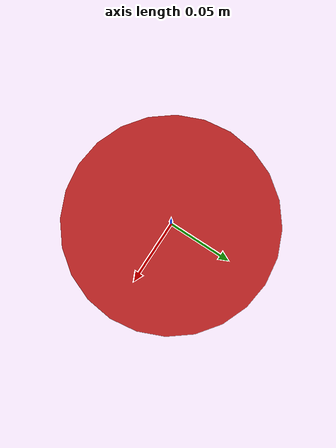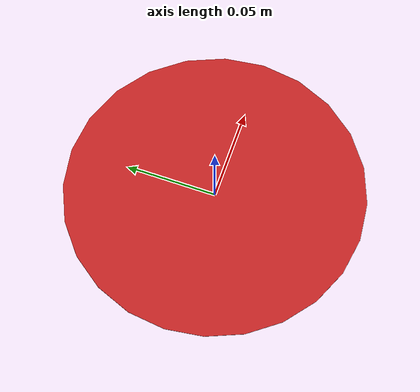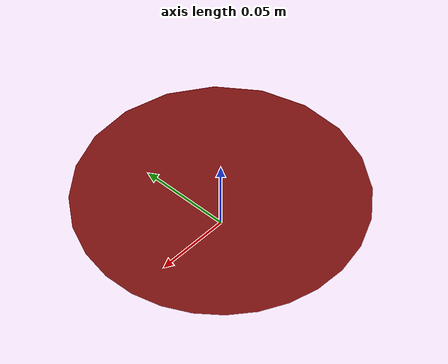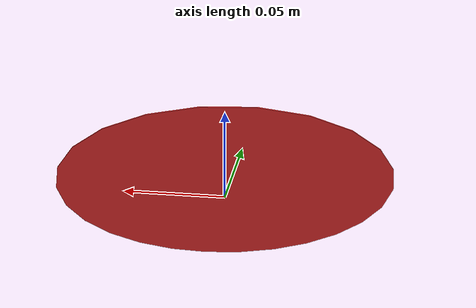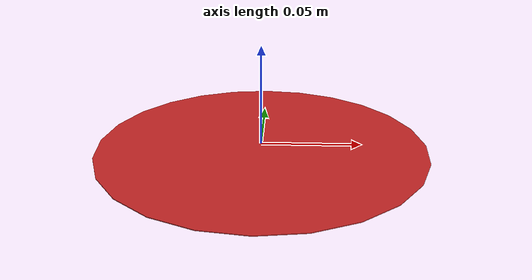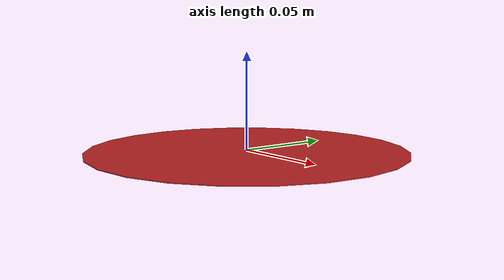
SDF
<?xml version='1.0'?>
<sdf version='1.7'>
  <model name='Token'>
    <link name='link_0'>
      <inertial>
        <mass>8.68216e-06</mass>
        <inertia>
          <ixx>1.46829e-08</ixx>
          <ixy>0</ixy>
          <ixz>0</ixz>
          <iyy>1.46829e-08</iyy>
          <iyz>0</iyz>
          <izz>2.93657e-08</izz>
        </inertia>
        <pose>0 0 0 0 -0 0</pose>
      </inertial>
      <pose>0 0 0 0 -0 0</pose>
      <self_collide>0</self_collide>
      <enable_wind>0</enable_wind>
      <kinematic>0</kinematic>
      <visual name='visual'>
        <pose>0 0 0 0 -0 0</pose>
        <geometry>
          <cylinder>
            <radius>0.0822472</radius>
            <length>0.000356689</length>
          </cylinder>
        </geometry>
        <material>
          <lighting>1</lighting>
          <script>
            <uri>file://media/materials/scripts/gazebo.material</uri>
            <name>Gazebo/Red</name>
          </script>
          <shader type='pixel'/>
        </material>
        <transparency>0</transparency>
        <cast_shadows>1</cast_shadows>
      </visual>
      <collision name='collision'>
        <laser_retro>0</laser_retro>
        <max_contacts>10</max_contacts>
        <pose>0 0 0 0 -0 0</pose>
        <geometry>
          <cylinder>
            <radius>0.082247</radius>
            <length>0.000357</length>
          </cylinder>
        </geometry>
        <surface>
          <friction>
            <ode>
              <mu>1</mu>
              <mu2>1</mu2>
              <fdir1>0 0 0</fdir1>
              <slip1>0</slip1>
              <slip2>0</slip2>
            </ode>
            <torsional>
              <coefficient>1</coefficient>
              <patch_radius>0</patch_radius>
              <surface_radius>0</surface_radius>
              <use_patch_radius>1</use_patch_radius>
              <ode>
                <slip>0</slip>
              </ode>
            </torsional>
          </friction>
          <bounce>
            <restitution_coefficient>0</restitution_coefficient>
            <threshold>1e+06</threshold>
          </bounce>
          <contact>
            <collide_without_contact>0</collide_without_contact>
            <collide_without_contact_bitmask>1</collide_without_contact_bitmask>
            <collide_bitmask>1</collide_bitmask>
            <ode>
              <soft_cfm>0</soft_cfm>
              <soft_erp>0.2</soft_erp>
              <kp>1e+13</kp>
              <kd>1</kd>
              <max_vel>0.01</max_vel>
              <min_depth>0</min_depth>
            </ode>
            <bullet>
              <split_impulse>1</split_impulse>
              <split_impulse_penetration_threshold>-0.01</split_impulse_penetration_threshold>
              <soft_cfm>0</soft_cfm>
              <soft_erp>0.2</soft_erp>
              <kp>1e+13</kp>
              <kd>1</kd>
            </bullet>
          </contact>
        </surface>
      </collision>
    </link>
    <static>0</static>
    <allow_auto_disable>1</allow_auto_disable>
  </model>
</sdf>
